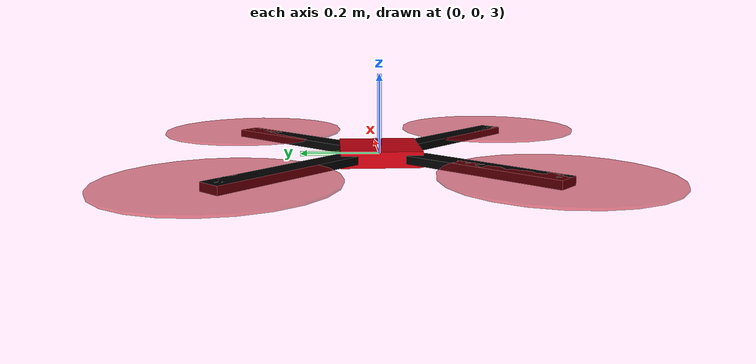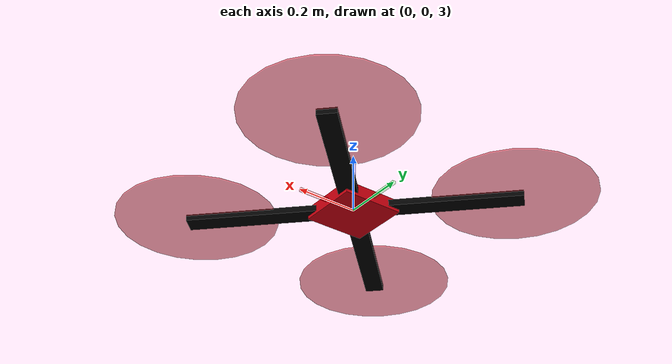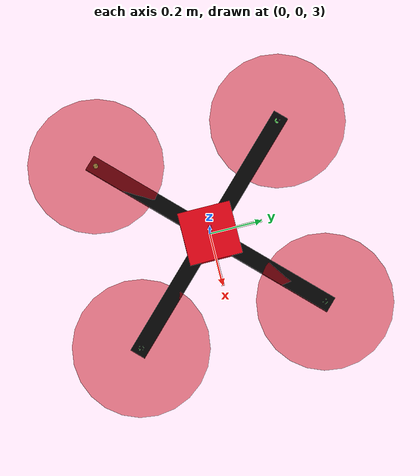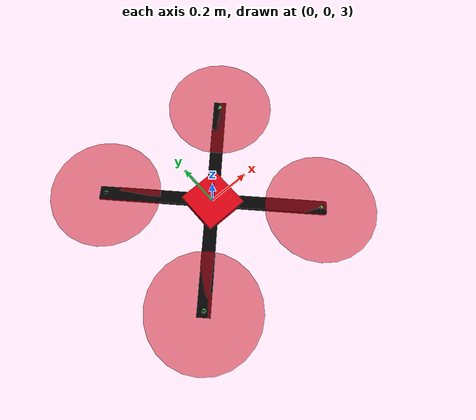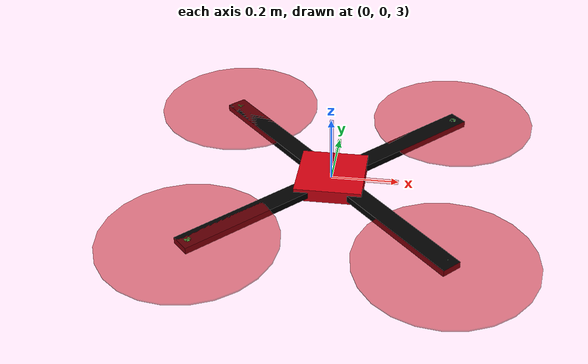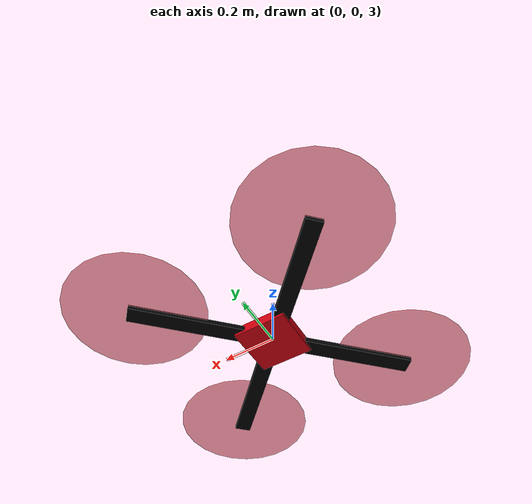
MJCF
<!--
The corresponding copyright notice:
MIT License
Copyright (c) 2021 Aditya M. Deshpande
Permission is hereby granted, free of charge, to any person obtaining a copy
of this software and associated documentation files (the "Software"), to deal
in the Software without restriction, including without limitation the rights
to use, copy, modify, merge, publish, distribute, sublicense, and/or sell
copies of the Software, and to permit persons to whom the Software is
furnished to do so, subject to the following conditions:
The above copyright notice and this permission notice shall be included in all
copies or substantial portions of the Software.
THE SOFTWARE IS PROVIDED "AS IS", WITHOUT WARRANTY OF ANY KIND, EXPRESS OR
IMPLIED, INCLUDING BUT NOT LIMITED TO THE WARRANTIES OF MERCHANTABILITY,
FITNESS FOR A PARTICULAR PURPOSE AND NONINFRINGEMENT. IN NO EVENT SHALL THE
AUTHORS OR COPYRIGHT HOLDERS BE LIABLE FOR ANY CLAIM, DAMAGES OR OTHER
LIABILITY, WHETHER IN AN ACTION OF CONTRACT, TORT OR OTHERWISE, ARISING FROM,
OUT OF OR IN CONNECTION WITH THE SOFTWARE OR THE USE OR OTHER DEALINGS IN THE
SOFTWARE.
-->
<mujoco model="quadcopter">
    <compiler angle="degree" inertiafromgeom="true" coordinate="local" eulerseq="xyz"/>
    <option timestep="0.01" gravity="0 0 -9.81" density="1" viscosity="1e-5" integrator="RK4"/>

    <default>
        <joint armature="1" damping="1" limited="true"/>
        <geom conaffinity="0" condim="3" density="5.0" friction="1 0.5 0.5" margin="0.01" rgba="0.8 0.6 0.4 1"/>
    </default>

    <asset>
        <texture builtin="gradient" type="skybox" height="100" width="100" rgb1="1 1 1" rgb2="0 0 0"/>
        <texture name="texgeom" builtin="flat" height="1278" mark="cross" markrgb="1 1 1" random="0.01" rgb1="0.8 0.6 0.4" rgb2="0.8 0.6 0.4" type="cube" width="127"/>
        <texture name="texplane" builtin="checker" height="100" width="100" rgb1="0 0 0" rgb2="0.8 0.8 0.8" type="2d"/>
        <material name="MatPlane" reflectance="0.5" shininess="1" specular="1" texrepeat="60 60" texture="texplane"/>
        <material name="geom" texture="texgeom" texuniform="true"/>
    </asset>

    <worldbody>
        <light cutoff="100" diffuse="1 1 1" dir="0 0 -1.3" directional="true" exponent="1" pos="0 0 1.3" specular=".1 .1 .1"/>
        <geom conaffinity="1" condim="3" material="MatPlane" name="floor" pos="0 0 0" rgba=".9 .9 .9 1" size="50 50 0.2" type="plane"/>

        <body name="core" pos="0 0 3.0">
            <joint name="root" type="free" damping="0" armature="0" pos="0 0 0" limited="false"/>
            <camera name="track" mode="trackcom" pos="0 -3 1.0" xyaxes="1 0 0 0 0 1"/>

            <geom name="core_geom" type="box" pos="0 0 0" quat="1 0 0 0" size=".1 .1 .02" rgba=".81 0 .06 1" mass=".345"/>

            <geom name="arm_front_right" type="box" pos=".22 -.22 0" size=".21 .03 .01" quat=".383 0 0 .924" rgba="0 0 0 1" mass=".082"/>
            <geom name="arm_front_left" type="box" pos=".22 .22 0" size=".21 .03 .01" quat=".924 0 0 .383" rgba="0 0 0 1" mass=".082"/>
            <geom name="arm_back_right" type="box" pos="-.22 -.22 0" size=".21 .03 .01" quat="-.383 0 0 .924" rgba="0 0 0 1" mass=".082"/>
            <geom name="arm_back_left" type="box" pos="-.22 .22 0" size=".21 .03 .01" quat=".924 0 0 -.383" rgba="0 0 0 1" mass=".082"/>

            <site name="motor_front_right" type="cylinder" pos=".35 -.35 .0075" size=".01 .0025" quat="1 0 0 0" rgba=".3 .8 .3 1"/>
            <site name="motor_front_left" type="cylinder" pos=".35 .35 .0075" size=".01 .0025" quat="1 0 0 0" rgba=".3 .8 .3 1"/>
            <site name="motor_back_right" type="cylinder" pos="-.35 -.35 .0075" size=".01 .0025" quat="1 0 0 0" rgba=".3 .8 .3 1"/>
            <site name="motor_back_left" type="cylinder" pos="-.35  .35 .0075" size=".01 .0025" quat="1 0 0 0" rgba=".3 .8 .3 1"/>

            <geom name="thruster_front_right" type="cylinder" pos=".35 -.35 .0075" size="0.255 .0025" quat="1 0 0 0" rgba=".75 0 .06 .5" mass=".065"/>
            <geom name="thruster_front_left" type="cylinder" pos=".35 .35 .0075" size="0.255 .0025" quat="1 0 0 0" rgba=".75 0 .06 .5" mass=".065"/>
            <geom name="thruster_back_right" type="cylinder" pos="-.35 -.35 .0075" size="0.255 .0025" quat="1 0 0 0" rgba=".75 0 .06 .5" mass=".065"/>
            <geom name="thruster_back_left" type="cylinder" pos="-.35 .35 .0075" size="0.255 .0025" quat="1 0 0 0" rgba=".75 0 .06 .5" mass=".065"/>

            <site name="x_axis" type="box" pos=".1 0 0" size=".1 .005 .005" quat="1 0 0 0" rgba="1 0 0 0.3"/>
            <site name="y_axis" type="box" pos="0 .1 0" size=".1 .005 .005" quat=".707 0 0 .707" rgba="0 1 0 0.3"/>
            <site name="z_axis" type="box" pos="0 0 .1" size=".1 .005 .005" quat="-.707 0 .707 0" rgba="0 0 1 0.3"/>
        </body>
    </worldbody>

    <actuator>
        <motor ctrllimited="true" ctrlrange="0 1" gear="0 0 9.15 0 0 1" site="motor_front_right"/>
        <motor ctrllimited="true" ctrlrange="0 1" gear="0 0 9.15 0 0 -1" site="motor_front_left"/>
        <motor ctrllimited="true" ctrlrange="0 1" gear="0 0 9.15 0 0 -1" site="motor_back_right"/>
        <motor ctrllimited="true" ctrlrange="0 1" gear="0 0 9.15 0 0 1" site="motor_back_left"/>
    </actuator>

</mujoco>
